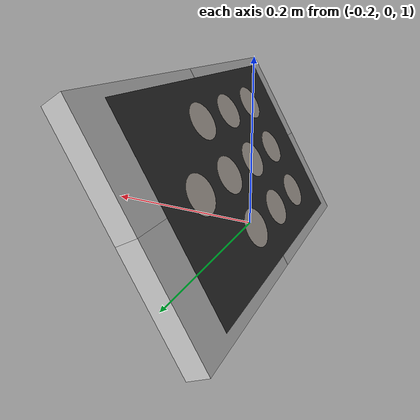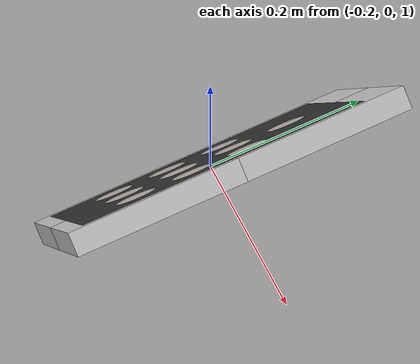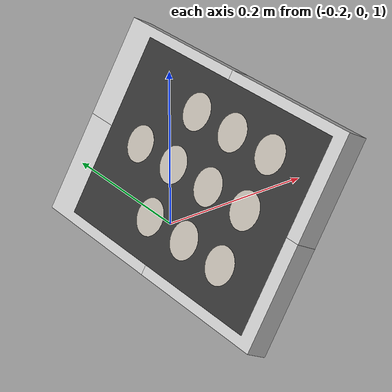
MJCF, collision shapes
<mujoco model="ipad_with_keypad">
  <default>
    <default class="ipad_visual">
      <geom group="2" type="mesh" contype="0" conaffinity="0" density="0"/>
    </default>
    <default class="ipad_collision">
      <geom group="3" type="box"/>
    </default>
  </default>

  <asset>
    <texture type="2d" name="screen_unlocked_tex" file="ipad/screen_unlocked.png"/>
    <texture type="2d" name="digit_0_tex" file="ipad/number/ipad_digit_0_off.png"/>
    <texture type="2d" name="digit_1_tex" file="ipad/number/ipad_digit_1_off.png"/>
    <texture type="2d" name="digit_2_tex" file="ipad/number/ipad_digit_2_off.png"/>
    <texture type="2d" name="digit_3_tex" file="ipad/number/ipad_digit_3_off.png"/>
    <texture type="2d" name="digit_4_tex" file="ipad/number/ipad_digit_4_off.png"/>
    <texture type="2d" name="digit_5_tex" file="ipad/number/ipad_digit_5_off.png"/>
    <texture type="2d" name="digit_6_tex" file="ipad/number/ipad_digit_6_off.png"/>
    <texture type="2d" name="digit_7_tex" file="ipad/number/ipad_digit_7_off.png"/>
    <texture type="2d" name="digit_8_tex" file="ipad/number/ipad_digit_8_off.png"/>
    <texture type="2d" name="digit_9_tex" file="ipad/number/ipad_digit_9_off.png"/>
    <texture type="2d" name="digit_0_on_tex" file="ipad/number/ipad_digit_0_on.png"/>
    <texture type="2d" name="digit_1_on_tex" file="ipad/number/ipad_digit_1_on.png"/>
    <texture type="2d" name="digit_2_on_tex" file="ipad/number/ipad_digit_2_on.png"/>
    <texture type="2d" name="digit_3_on_tex" file="ipad/number/ipad_digit_3_on.png"/>
    <texture type="2d" name="digit_4_on_tex" file="ipad/number/ipad_digit_4_on.png"/>
    <texture type="2d" name="digit_5_on_tex" file="ipad/number/ipad_digit_5_on.png"/>
    <texture type="2d" name="digit_6_on_tex" file="ipad/number/ipad_digit_6_on.png"/>
    <texture type="2d" name="digit_7_on_tex" file="ipad/number/ipad_digit_7_on.png"/>
    <texture type="2d" name="digit_8_on_tex" file="ipad/number/ipad_digit_8_on.png"/>
    <texture type="2d" name="digit_9_on_tex" file="ipad/number/ipad_digit_9_on.png"/>
    <material name="mat_screen_unlocked" texture="screen_unlocked_tex" specular="0.5" shininess="0.5"/>
    <material name="Material_black" rgba="0.2 0.2 0.2 1" specular="0.1" shininess="0.1" texuniform="true"/>
    <material name="Material_white" rgba="1 1 1 1" specular="0.8" shininess="0.9" texuniform="true"/>
    <material name="Material_grey" rgba="0.7 0.7 0.7 1" specular="0.2" shininess="0.2" texuniform="true"/>
    <material name="mat_digit_0" texture="digit_0_tex" specular="0.1" shininess="0.1" texuniform="false" texrepeat="1 1"/>
    <material name="mat_digit_1" texture="digit_1_tex" specular="0.1" shininess="0.1" texuniform="false" texrepeat="1 1"/>
    <material name="mat_digit_2" texture="digit_2_tex" specular="0.1" shininess="0.1" texuniform="false" texrepeat="1 1"/>
    <material name="mat_digit_3" texture="digit_3_tex" specular="0.1" shininess="0.1" texuniform="false" texrepeat="1 1"/>
    <material name="mat_digit_4" texture="digit_4_tex" specular="0.1" shininess="0.1" texuniform="false" texrepeat="1 1"/>
    <material name="mat_digit_5" texture="digit_5_tex" specular="0.1" shininess="0.1" texuniform="false" texrepeat="1 1"/>
    <material name="mat_digit_6" texture="digit_6_tex" specular="0.1" shininess="0.1" texuniform="false" texrepeat="1 1"/>
    <material name="mat_digit_7" texture="digit_7_tex" specular="0.1" shininess="0.1" texuniform="false" texrepeat="1 1"/>
    <material name="mat_digit_8" texture="digit_8_tex" specular="0.1" shininess="0.1" texuniform="false" texrepeat="1 1"/>
    <material name="mat_digit_9" texture="digit_9_tex" specular="0.1" shininess="0.1" texuniform="false" texrepeat="1 1"/>
    <material name="mat_digit_0_light" texture="digit_0_on_tex" specular="0.1" shininess="0.1" texuniform="false" texrepeat="1 1"/>
    <material name="mat_digit_1_light" texture="digit_1_on_tex" specular="0.1" shininess="0.1" texuniform="false" texrepeat="1 1"/>
    <material name="mat_digit_2_light" texture="digit_2_on_tex" specular="0.1" shininess="0.1" texuniform="false" texrepeat="1 1"/>
    <material name="mat_digit_3_light" texture="digit_3_on_tex" specular="0.1" shininess="0.1" texuniform="false" texrepeat="1 1"/>
    <material name="mat_digit_4_light" texture="digit_4_on_tex" specular="0.1" shininess="0.1" texuniform="false" texrepeat="1 1"/>
    <material name="mat_digit_5_light" texture="digit_5_on_tex" specular="0.1" shininess="0.1" texuniform="false" texrepeat="1 1"/>
    <material name="mat_digit_6_light" texture="digit_6_on_tex" specular="0.1" shininess="0.1" texuniform="false" texrepeat="1 1"/>
    <material name="mat_digit_7_light" texture="digit_7_on_tex" specular="0.1" shininess="0.1" texuniform="false" texrepeat="1 1"/>
    <material name="mat_digit_8_light" texture="digit_8_on_tex" specular="0.1" shininess="0.1" texuniform="false" texrepeat="1 1"/>
    <material name="mat_digit_9_light" texture="digit_9_on_tex" specular="0.1" shininess="0.1" texuniform="false" texrepeat="1 1"/>
    <mesh name="ipad_mesh" file="ipad/ipad_thin_2.obj" scale="0.4 0.4 0.4"/>
  </asset>

  <worldbody>
    <body name="ipad_body" pos="-0.17 0.2 1.06" quat="0 -0.5 0 0.8660254">
      <freejoint name="ipad_freejoint"/>
      <geom material="Material_grey" mesh="ipad_mesh" class="ipad_visual"/>
      <geom name="ipad_collision_ll" class="ipad_collision" size="0.067383 0.1037065 0.014285" pos="-0.067171 0.1037065 -0.001296" mass="0.1" friction="1 0.005 0.0001" rgba="0.8 0.8 0.8 0.9"/>
      <geom name="ipad_collision_lr" class="ipad_collision" size="0.067383 0.1037065 0.014285" pos="0.067595 0.1037065 -0.001296" mass="0.02" friction="1 0.005 0.0001" rgba="0.8 0.8 0.8 0.5"/>
      <geom name="ipad_collision_ul" class="ipad_collision" size="0.067383 0.1037065 0.014285" pos="-0.067171 0.3111195 -0.001296" mass="0.01" friction="1 0.005 0.0001" rgba="0.8 0.8 0.8 0.2"/>
      <geom name="ipad_collision_ur" class="ipad_collision" size="0.067383 0.1037065 0.014285" pos="0.067595 0.3111195 -0.001296" mass="0.02" friction="1 0.005 0.0001" rgba="0.8 0.8 0.8 0.5"/>
      <!-- Screen overlay: thin box using textured Material -->
      <geom name="ipad_screen" type="box" size="0.122 0.175 0.001" pos="0 0.22 0.012" material="Material_black" contype="0" conaffinity="0" group="1"/>

      <body name="buttons_root" pos="0 0.25 0.02295" quat="1 0 0 0">
        <!-- btn_1 -->
        <body name="btn_1" pos="-0.07 0.07 -0.01">
          <geom name="btn1_cyl" type="cylinder" size="0.024 0.0001" material="mat_digit_1" mass="0.0001"/>
        </body>

        <!-- btn_2 -->
        <body name="btn_2" pos="0 0.07 -0.01">
          <geom name="btn2_cyl" type="cylinder" size="0.024 0.0001" material="mat_digit_2" mass="0.0001"/>
        </body>

        <!-- btn_3 -->
        <body name="btn_3" pos="0.07 0.07 -0.01">
          <geom name="btn3_cyl" type="cylinder" size="0.024 0.0001" material="mat_digit_3" mass="0.0001"/>
        </body>

        <!-- btn_4 -->
        <body name="btn_4" pos="-0.07 0 -0.01">
          <geom name="btn4_cyl" type="cylinder" size="0.024 0.0001" material="mat_digit_4" mass="0.0001"/>
        </body>

        <!-- btn_5 -->
        <body name="btn_5" pos="0 0 -0.01">
          <geom name="btn5_cyl" type="cylinder" size="0.024 0.0001" material="mat_digit_5"  mass="0.0001"/>
        </body>

        <!-- btn_6 -->
        <body name="btn_6" pos="0.07 0 -0.01">
          <geom name="btn6_cyl" type="cylinder" size="0.024 0.0001" material="mat_digit_6" mass="0.0001"/>
        </body>

        <!-- btn_7 -->
        <body name="btn_7" pos="-0.07 -0.07 -0.01">
          <geom name="btn7_cyl" type="cylinder" size="0.024 0.0001" material="mat_digit_7" mass="0.0001" />
        </body>

        <!-- btn_8 -->
        <body name="btn_8" pos="0 -0.07 -0.01">
          <geom name="btn8_cyl" type="cylinder" size="0.024 0.0001" material="mat_digit_8" mass="0.0001"/>
        </body>

        <!-- btn_9 -->
        <body name="btn_9" pos="0.07 -0.07 -0.01">
          <geom name="btn9_cyl" type="cylinder" size="0.024 0.0001" material="mat_digit_9" mass="0.0001"/>
        </body>

        <!-- btn_0 -->
        <body name="btn_0" pos="0 -0.14 -0.01">
          <geom name="btn0_cyl" type="cylinder" size="0.024 0.0001" material="mat_digit_0" mass="0.0001"/>
        </body>
      </body>

    </body>
  </worldbody>
</mujoco>
